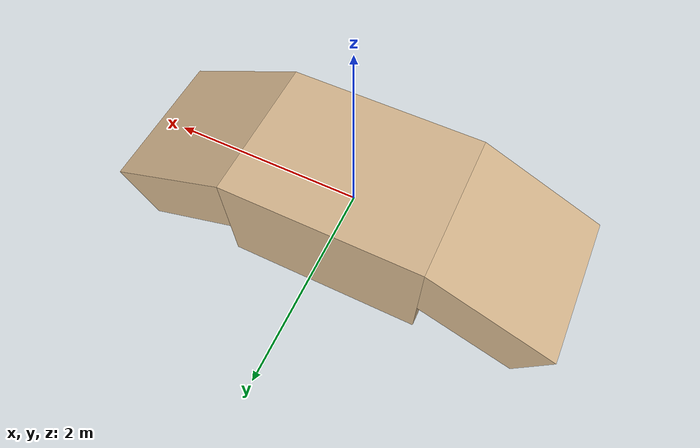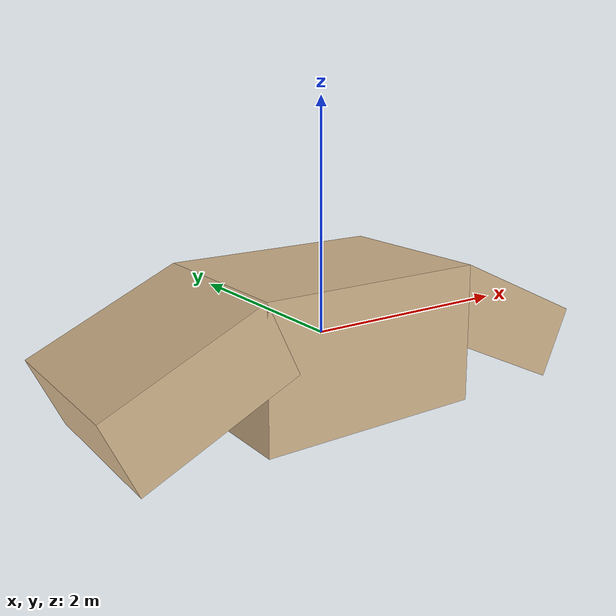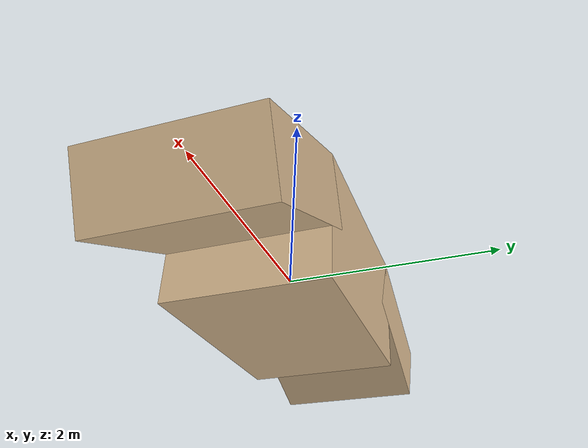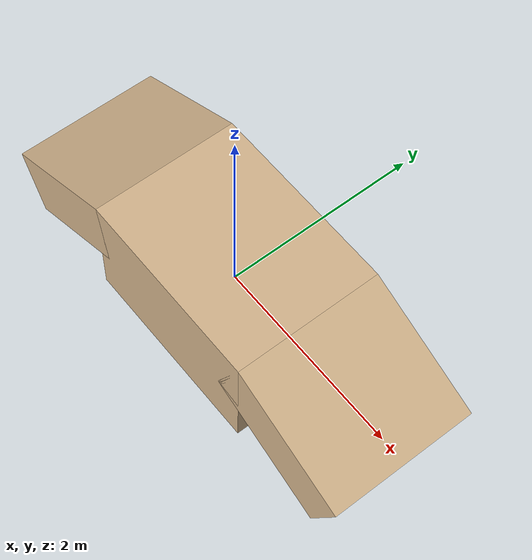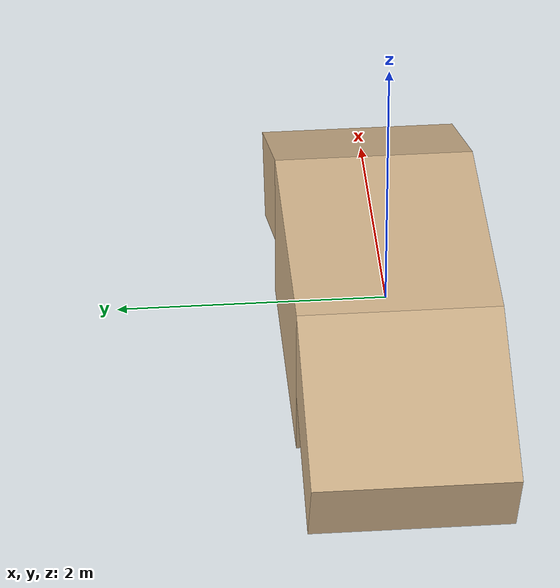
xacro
<robot name="slope" xmlns:xacro="http://wiki.ros.org/xacro">
    <!-- calculate inertial -->
    <xacro:include filename="inertial.xacro" />
    <!-- main  -->
    <xacro:include filename="slope_template.xacro" />

    <!--
        run the following cmd to generate urdf file
        rosrun xacro xacro filename.xacro>filename_new.urdf
    -->
</robot>

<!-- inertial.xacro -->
<robot name="base" xmlns:xacro="http://wiki.ros.org/xacro">
    <!-- Xacro for inertia matrix -->
    <xacro:macro name="sphere_inertial_matrix" params="m r">
        <inertial>
            <origin xyz="0 0 0" rpy="0 0 0" />
            <mass value="${m}" />
            <inertia ixx="${2*m*r*r/5}" ixy="0" ixz="0"
                    iyy="${2*m*r*r/5}" iyz="0"
                    izz="${2*m*r*r/5}" />
        </inertial>
    </xacro:macro>

    <xacro:macro name="cylinder_inertial_matrix" params="m r h">
        <inertial>
            <origin xyz="0 0 0" rpy="0 0 0" />
            <mass value="${m}" />
            <inertia ixx="${m*(3*r*r+h*h)/12}" ixy = "0" ixz = "0"
                    iyy="${m*(3*r*r+h*h)/12}" iyz = "0"
                    izz="${m*r*r/2}" />
        </inertial>
    </xacro:macro>

    <xacro:macro name="Box_inertial_matrix" params="m l w h">
       <inertial>
            <origin xyz="0 0 0" rpy="0 0 0" />
            <mass value="${m}" />
            <inertia ixx="${m*(h*h + l*l)/12}" ixy = "0" ixz = "0"
                    iyy="${m*(w*w + l*l)/12}" iyz= "0"
                    izz="${m*(w*w + h*h)/12}" />
       </inertial>
   </xacro:macro>
</robot>

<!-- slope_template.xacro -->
<robot name="stairs" xmlns:xacro="http://wiki.ros.org/xacro">

    <material name="tan">
        <color rgba="0.824 0.706 0.549 1.0"/>
    </material>

    <!-- change value for different stairs -->
    <xacro:property name="plane_length" value="2." />
    <xacro:property name="plane_width" value="1.5" />
    <xacro:property name="plane_height" value="1.2" />
    <xacro:property name="plane_mass" value="10" />

    <xacro:property name="slope_angle" value="${25/180*pi}" />
    <xacro:property name="slope_length" value="${plane_height/2/sin(slope_angle)}" />
    <xacro:property name="slope_width" value="1.5" />
    <xacro:property name="slope_height" value="${plane_height/2/cos(slope_angle)}" />
    <xacro:property name="slope_x" value="${plane_height/2/tan(2*slope_angle) + plane_length/2}" />
    <xacro:property name="slope_mass" value="10" />

    <link name="link_base">
        <xacro:Box_inertial_matrix m="${plane_mass}" l="${plane_length}" w="${plane_width}" h="${plane_height}" />
        <visual>
            <origin xyz="0 0 0" rpy="0 0 0" />
            <geometry>
                <box size="${plane_length} ${plane_width} ${plane_height}" />
            </geometry>
            <material name="tan" />
        </visual>
        <collision>
            <origin xyz="0 0 0" rpy="0 0 0" />
            <geometry>
                <box size="${plane_length} ${plane_width} ${plane_height}" />
            </geometry>
        </collision>
    </link>

    <link name="link_left">
        <xacro:Box_inertial_matrix m="${slope_mass}" l="${sin(slope_angle)}" w="${slope_width}" h="${cos(slope_angle)}" />
        <visual>
            <origin xyz="0 0 0" rpy="0 ${slope_angle} 0" />
            <geometry>
                <box size="${slope_length} ${slope_width} ${slope_height}" />
            </geometry>
            <material name="tan" />
        </visual>
        <collision>
            <origin xyz="0 0 0" rpy="0 ${slope_angle} 0" />
            <geometry>
                <box size="${slope_length} ${slope_width} ${slope_height}" />
            </geometry>
        </collision>
    </link>
    <joint name="joint_left" type="fixed">
        <parent link="link_base" />
        <child link="link_left" />
        <origin xyz="${slope_x} 0 0" />
    </joint>

    <link name="link_right">
        <xacro:Box_inertial_matrix m="${slope_mass}" l="${sin(slope_angle)}" w="${slope_width}" h="${cos(slope_angle)}" />
        <visual>
            <origin xyz="0 0 0" rpy="0 ${-slope_angle} 0" />
            <geometry>
                <box size="${slope_length} ${slope_width} ${slope_height}" />
            </geometry>
            <material name="tan" />
        </visual>
        <collision>
            <origin xyz="0 0 0" rpy="0 ${-slope_angle} 0" />
            <geometry>
                <box size="${slope_length} ${slope_width} ${slope_height}" />
            </geometry>
        </collision>
    </link>
    <joint name="joint_right" type="fixed">
        <parent link="link_base" />
        <child link="link_right" />
        <origin xyz="${-slope_x} 0 0" />
    </joint>

</robot>
